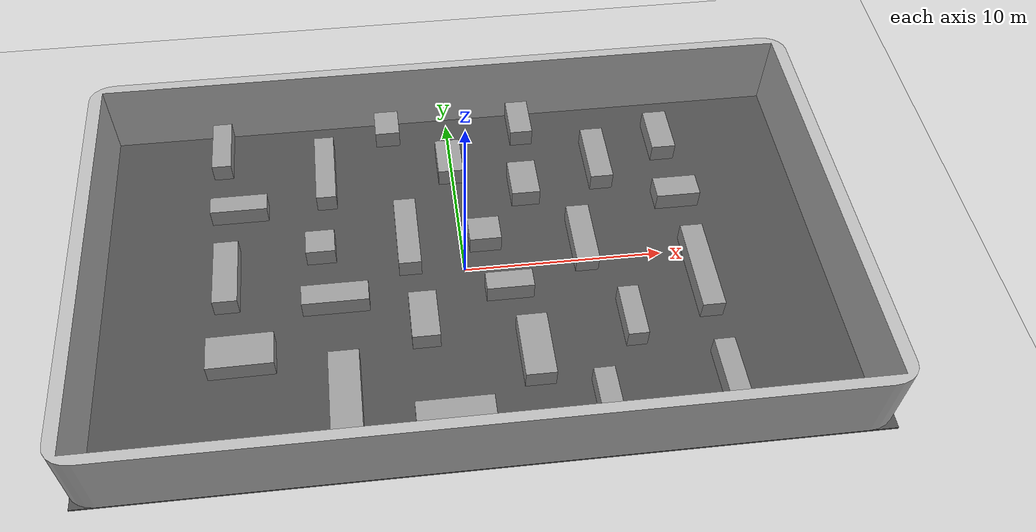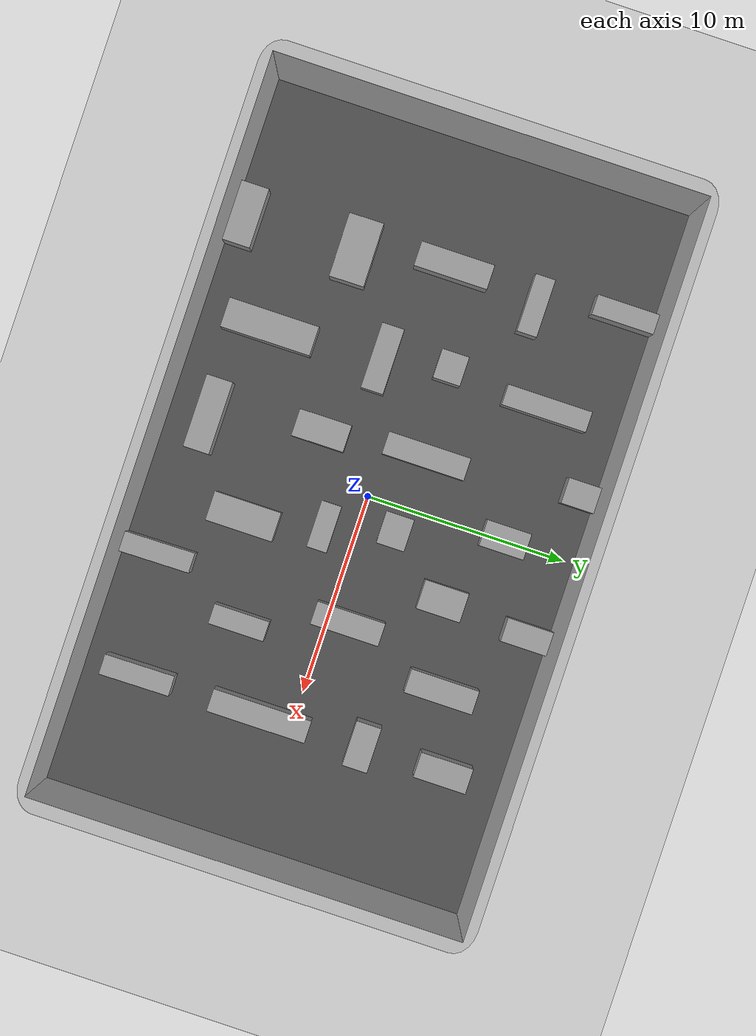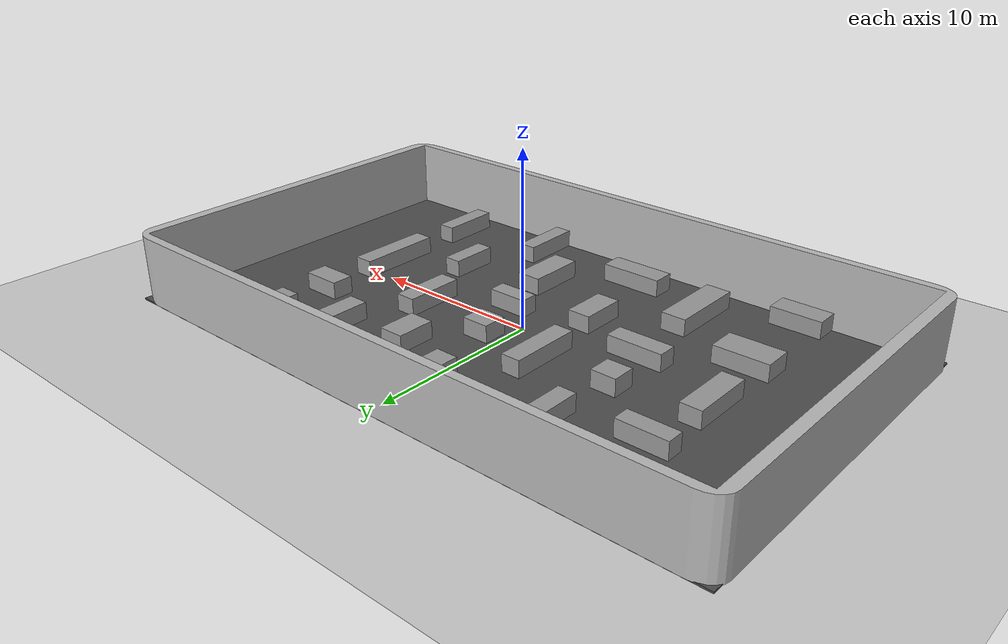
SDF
<sdf version="1.6">
 <world name="default">
  <light name="sun" type="directional">
   <cast_shadows>0</cast_shadows>
   <pose>0 0 100 0 -0 0</pose>
   <diffuse>0.8 0.8 0.8 1</diffuse>
   <specular>0.1 0.1 0.1 1</specular>
   <attenuation>
    <range>1000</range>
    <constant>0.9</constant>
    <linear>0.01</linear>
    <quadratic>0.001</quadratic>
   </attenuation>
   <direction>0 0 -1</direction>
  </light>
  <model name="ground_plane">
   <static>1</static>
   <link name="link">
    <collision name="collision">
     <geometry><plane><normal>0 0 1</normal><size>100 100</size></plane></geometry>
     <surface><friction><ode><mu>100</mu><mu2>50</mu2></ode></friction></surface>
    </collision>
    <visual name="visual">
     <cast_shadows>0</cast_shadows>
     <geometry><plane><normal>0 0 1</normal><size>100 100</size></plane></geometry>
     <material>
      <script><uri>file://media/materials/scripts/gazebo.material</uri><name>Gazebo/Grey</name></script>
     </material>
    </visual>
   </link>
  </model>
  <gravity>0 0 -9.8</gravity>
  <magnetic_field>6e-06 2.3e-05 -4.2e-05</magnetic_field>
  <atmosphere type="adiabatic"/>
  <physics name="default_physics" default="0" type="ode">
   <max_step_size>0.001</max_step_size>
   <real_time_factor>1</real_time_factor>
   <real_time_update_rate>1000</real_time_update_rate>
  </physics>
  <scene><ambient>0.4 0.4 0.4 1</ambient><background>0.7 0.7 0.7 1</background><shadows>1</shadows></scene>
  <spherical_coordinates>
   <surface_model>EARTH_WGS84</surface_model>
   <latitude_deg>0</latitude_deg>
   <longitude_deg>0</longitude_deg>
   <elevation>0</elevation>
   <heading_deg>0</heading_deg>
  </spherical_coordinates>
  <model name="asphalt_plane">
   <static>1</static>
   <link name="link">
    <collision name="collision"><geometry><box><size>37 22 0.1</size></box></geometry></collision>
    <visual name="visual">
     <cast_shadows>0</cast_shadows>
     <geometry><box><size>37 22 0.1</size></box></geometry>
     <material>
      <script>
       <uri>model://asphalt_plane/materials/scripts</uri>
       <uri>model://asphalt_plane/materials/textures</uri>
       <name>vrc/asphalt</name>
      </script>
     </material>
    </visual>
   </link>
   <pose>0.074349 -0.018898 0 0 -0 0</pose>
  </model>
  <model name="yard_square">
   <pose>0 0 0 1.5708 -0 1.5708</pose>
   <static>1</static>
   <link name="body">
    <collision name="collision">
     <geometry><mesh><uri>model://yard_square/yard_square.stl</uri><scale>0.1 0.1 0.13</scale></mesh></geometry>
    </collision>
    <visual name="visual">
     <geometry><mesh><uri>model://yard_square/yard_square.stl</uri><scale>0.1 0.1 0.13</scale></mesh></geometry>
    </visual>
   </link>
  </model>
  <audio><device>default</device></audio>
  <model name="unit_box_0">
   <pose>-2.73107 2.0511 0.550002 -8e-06 -0 4.5e-05</pose>
   <static>1</static>
   <link name="link">
    <inertial>
     <mass>1</mass>
     <inertia>
      <ixx>0.166667</ixx>
      <ixy>0</ixy>
      <ixz>0</ixz>
      <iyy>0.166667</iyy>
      <iyz>0</iyz>
      <izz>0.166667</izz>
     </inertia>
    </inertial>
    <collision name="collision"><geometry><box><size>1.12328 4.13675 1</size></box></geometry></collision>
    <visual name="visual">
     <geometry><box><size>1.12328 4.13675 1</size></box></geometry>
     <material>
      <script><name>Gazebo/Grey</name><uri>file://media/materials/scripts/gazebo.material</uri></script>
     </material>
    </visual>
   </link>
  </model>
  <model name="unit_box_2">
   <pose>3.61921 4.98138 0.549996 -7e-06 -0 0.001667</pose>
   <static>1</static>
   <link name="link">
    <inertial>
     <mass>1</mass>
     <inertia>
      <ixx>0.166667</ixx>
      <ixy>0</ixy>
      <ixz>0</ixz>
      <iyy>0.166667</iyy>
      <iyz>0</iyz>
      <izz>0.166667</izz>
     </inertia>
    </inertial>
    <collision name="collision"><geometry><box><size>1.4552 2.19896 1</size></box></geometry></collision>
    <visual name="visual">
     <geometry><box><size>1.4552 2.19896 1</size></box></geometry>
     <material>
      <script><name>Gazebo/Grey</name><uri>file://media/materials/scripts/gazebo.material</uri></script>
     </material>
    </visual>
   </link>
  </model>
  <model name="unit_box_3">
   <pose>3.96727 9.408 0.549227 0 0.000383 -0.000473</pose>
   <static>1</static>
   <link name="link">
    <inertial>
     <mass>1</mass>
     <inertia>
      <ixx>0.166667</ixx>
      <ixy>0</ixy>
      <ixz>0</ixz>
      <iyy>0.166667</iyy>
      <iyz>0</iyz>
      <izz>0.166667</izz>
     </inertia>
    </inertial>
    <collision name="collision"><geometry><box><size>1.18061 2.38675 1</size></box></geometry></collision>
    <visual name="visual">
     <geometry><box><size>1.18061 2.38675 1</size></box></geometry>
     <material>
      <script><name>Gazebo/Grey</name><uri>file://media/materials/scripts/gazebo.material</uri></script>
     </material>
    </visual>
   </link>
  </model>
  <model name="unit_box_4">
   <pose>-11.0452 -4.24703 0.544487 0 -0 0.009696</pose>
   <static>1</static>
   <link name="link">
    <inertial>
     <mass>1</mass>
     <inertia>
      <ixx>0.166667</ixx>
      <ixy>0</ixy>
      <ixz>0</ixz>
      <iyy>0.166667</iyy>
      <iyz>0</iyz>
      <izz>0.166667</izz>
     </inertia>
    </inertial>
    <collision name="collision"><geometry><box><size>3.1937 1.73528 1</size></box></geometry></collision>
    <visual name="visual">
     <geometry><box><size>3.1937 1.73528 1</size></box></geometry>
     <material>
      <script><name>Gazebo/Grey</name><uri>file://media/materials/scripts/gazebo.material</uri></script>
     </material>
    </visual>
   </link>
  </model>
  <model name="unit_box_5">
   <pose>-1.3217 -8.51916 0.549982 0 1.7e-05 -1.57091</pose>
   <static>1</static>
   <link name="link">
    <inertial>
     <mass>1</mass>
     <inertia>
      <ixx>0.166667</ixx>
      <ixy>0</ixy>
      <ixz>0</ixz>
      <iyy>0.166667</iyy>
      <iyz>0</iyz>
      <izz>0.166667</izz>
     </inertia>
    </inertial>
    <collision name="collision"><geometry><box><size>1.31392 3.64155 1</size></box></geometry></collision>
    <visual name="visual">
     <geometry><box><size>1.31392 3.64155 1</size></box></geometry>
     <material>
      <script><name>Gazebo/Grey</name><uri>file://media/materials/scripts/gazebo.material</uri></script>
     </material>
    </visual>
   </link>
  </model>
  <model name="unit_box_10">
   <pose>-6.50105 -1.41651 0.547399 -0.000838 0 0</pose>
   <static>1</static>
   <link name="link">
    <inertial>
     <mass>1</mass>
     <inertia>
      <ixx>0.166667</ixx>
      <ixy>0</ixy>
      <ixz>0</ixz>
      <iyy>0.166667</iyy>
      <iyz>0</iyz>
      <izz>0.166667</izz>
     </inertia>
    </inertial>
    <collision name="collision"><geometry><box><size>3.27683 1.11673 1</size></box></geometry></collision>
    <visual name="visual">
     <geometry><box><size>3.27683 1.11673 1</size></box></geometry>
     <material>
      <script><name>Gazebo/Grey</name><uri>file://media/materials/scripts/gazebo.material</uri></script>
     </material>
    </visual>
   </link>
  </model>
  <model name="unit_box_1">
   <pose>11.617 -1.6301 0.550023 6e-06 -0 0.000254</pose>
   <static>1</static>
   <link name="link">
    <inertial>
     <mass>1</mass>
     <inertia>
      <ixx>0.166667</ixx>
      <ixy>0</ixy>
      <ixz>0</ixz>
      <iyy>0.166667</iyy>
      <iyz>0</iyz>
      <izz>0.166667</izz>
     </inertia>
    </inertial>
    <collision name="collision"><geometry><box><size>1.12056 4.92766 1</size></box></geometry></collision>
    <visual name="visual">
     <geometry><box><size>1.12056 4.92766 1</size></box></geometry>
     <material>
      <script><name>Gazebo/Grey</name><uri>file://media/materials/scripts/gazebo.material</uri></script>
     </material>
    </visual>
   </link>
  </model>
  <model name="unit_box_6">
   <pose>-6.72428 6.80685 0.549214 -0.00038 0 7.5e-05</pose>
   <static>1</static>
   <link name="link">
    <inertial>
     <mass>1</mass>
     <inertia>
      <ixx>0.166667</ixx>
      <ixy>0</ixy>
      <ixz>0</ixz>
      <iyy>0.166667</iyy>
      <iyz>0</iyz>
      <izz>0.166667</izz>
     </inertia>
    </inertial>
    <collision name="collision"><geometry><box><size>1.02781 4.24453 1</size></box></geometry></collision>
    <visual name="visual">
     <geometry><box><size>1.02781 4.24453 1</size></box></geometry>
     <material>
      <script><name>Gazebo/Grey</name><uri>file://media/materials/scripts/gazebo.material</uri></script>
     </material>
    </visual>
   </link>
  </model>
  <model name="unit_box_8">
   <pose>-6.23783 -7.03641 0.549084 0.00039 -0 0</pose>
   <static>1</static>
   <link name="link">
    <inertial>
     <mass>1</mass>
     <inertia>
      <ixx>0.166667</ixx>
      <ixy>0</ixy>
      <ixz>0</ixz>
      <iyy>0.166667</iyy>
      <iyz>0</iyz>
      <izz>0.166667</izz>
     </inertia>
    </inertial>
    <collision name="collision"><geometry><box><size>1.46752 4.51085 1</size></box></geometry></collision>
    <visual name="visual">
     <geometry><box><size>1.46752 4.51085 1</size></box></geometry>
     <material>
      <script><name>Gazebo/Grey</name><uri>file://media/materials/scripts/gazebo.material</uri></script>
     </material>
    </visual>
   </link>
  </model>
  <model name="unit_box_11">
   <pose>7.75128 6.30775 0.55279 0.00034 -0 0</pose>
   <static>1</static>
   <link name="link">
    <inertial>
     <mass>1</mass>
     <inertia>
      <ixx>0.166667</ixx>
      <ixy>0</ixy>
      <ixz>0</ixz>
      <iyy>0.166667</iyy>
      <iyz>0</iyz>
      <izz>0.166667</izz>
     </inertia>
    </inertial>
    <collision name="collision"><geometry><box><size>1.17874 3.42934 1</size></box></geometry></collision>
    <visual name="visual">
     <geometry><box><size>1.17874 3.42934 1</size></box></geometry>
     <material>
      <script><name>Gazebo/Grey</name><uri>file://media/materials/scripts/gazebo.material</uri></script>
     </material>
    </visual>
   </link>
  </model>
  <model name="unit_box_12">
   <pose>11.4234 7.61252 0.547927 -0.000766 0 0</pose>
   <static>1</static>
   <link name="link">
    <inertial>
     <mass>1</mass>
     <inertia>
      <ixx>0.166667</ixx>
      <ixy>0</ixy>
      <ixz>0</ixz>
      <iyy>0.166667</iyy>
      <iyz>0</iyz>
      <izz>0.166667</izz>
     </inertia>
    </inertial>
    <collision name="collision"><geometry><box><size>1.25351 2.6176 1</size></box></geometry></collision>
    <visual name="visual">
     <geometry><box><size>1.25351 2.6176 1</size></box></geometry>
     <material>
      <script><name>Gazebo/Grey</name><uri>file://media/materials/scripts/gazebo.material</uri></script>
     </material>
    </visual>
   </link>
  </model>
  <model name="unit_box_2_clone">
   <pose>-7.12788 1.83175 0.549998 -7e-06 -0 0.001667</pose>
   <static>1</static>
   <link name="link">
    <inertial>
     <mass>1</mass>
     <inertia>
      <ixx>0.166667</ixx>
      <ixy>0</ixy>
      <ixz>0</ixz>
      <iyy>0.166667</iyy>
      <iyz>0</iyz>
      <izz>0.166667</izz>
     </inertia>
    </inertial>
    <collision name="collision"><geometry><box><size>1.46531 1.36719 1</size></box></geometry></collision>
    <visual name="visual">
     <geometry><box><size>1.46531 1.36719 1</size></box></geometry>
     <material>
      <script><name>Gazebo/Grey</name><uri>file://media/materials/scripts/gazebo.material</uri></script>
     </material>
    </visual>
   </link>
  </model>
  <model name="unit_box_14">
   <pose>-11.8147 0.44022 0.55 0 -0 0</pose>
   <static>1</static>
   <link name="link">
    <inertial>
     <mass>1</mass>
     <inertia>
      <ixx>0.166667</ixx>
      <ixy>0</ixy>
      <ixz>0</ixz>
      <iyy>0.166667</iyy>
      <iyz>0</iyz>
      <izz>0.166667</izz>
     </inertia>
    </inertial>
    <collision name="collision"><geometry><box><size>1.22641 3.68175 1</size></box></geometry></collision>
    <visual name="visual">
     <geometry><box><size>1.22641 3.68175 1</size></box></geometry>
     <material>
      <script><name>Gazebo/Grey</name><uri>file://media/materials/scripts/gazebo.material</uri></script>
     </material>
    </visual>
   </link>
  </model>
  <model name="unit_box_16">
   <pose>-12.1721 8.97934 0.549961 3.4e-05 -0 0</pose>
   <static>1</static>
   <link name="link">
    <inertial>
     <mass>1</mass>
     <inertia>
      <ixx>0.166667</ixx>
      <ixy>0</ixy>
      <ixz>0</ixz>
      <iyy>0.166667</iyy>
      <iyz>0</iyz>
      <izz>0.166667</izz>
     </inertia>
    </inertial>
    <collision name="collision"><geometry><box><size>1 3.13508 1</size></box></geometry></collision>
    <visual name="visual">
     <geometry><box><size>1 3.13508 1</size></box></geometry>
     <material>
      <script><name>Gazebo/Grey</name><uri>file://media/materials/scripts/gazebo.material</uri></script>
     </material>
    </visual>
   </link>
  </model>
  <model name="unit_box_17">
   <pose>-10.9889 -9.8811 0.549948 4.3e-05 0 -1e-06</pose>
   <static>1</static>
   <link name="link">
    <inertial>
     <mass>1</mass>
     <inertia>
      <ixx>0.166667</ixx>
      <ixy>0</ixy>
      <ixz>0</ixz>
      <iyy>0.166667</iyy>
      <iyz>0</iyz>
      <izz>0.166667</izz>
     </inertia>
    </inertial>
    <collision name="collision"><geometry><box><size>2.98242 1.49188 1</size></box></geometry></collision>
    <visual name="visual">
     <geometry><box><size>2.98242 1.49188 1</size></box></geometry>
     <material>
      <script><name>Gazebo/Grey</name><uri>file://media/materials/scripts/gazebo.material</uri></script>
     </material>
    </visual>
   </link>
  </model>
  <model name="unit_box">
   <pose>1.16313 1.77285 0.549958 3.6e-05 -0 0</pose>
   <static>1</static>
   <link name="link">
    <inertial>
     <mass>1</mass>
     <inertia>
      <ixx>0.166667</ixx>
      <ixy>0</ixy>
      <ixz>0</ixz>
      <iyy>0.166667</iyy>
      <iyz>0</iyz>
      <izz>0.166667</izz>
     </inertia>
    </inertial>
    <collision name="collision"><geometry><box><size>1.6032 1.4008 1</size></box></geometry></collision>
    <visual name="visual">
     <geometry><box><size>1.6032 1.4008 1</size></box></geometry>
     <material>
      <script><name>Gazebo/Grey</name><uri>file://media/materials/scripts/gazebo.material</uri></script>
     </material>
    </visual>
   </link>
  </model>
  <model name="unit_box_7">
   <pose>-11.2256 4.76444 0.549996 -9e-06 -0 0.000673</pose>
   <static>1</static>
   <link name="link">
    <inertial>
     <mass>1</mass>
     <inertia>
      <ixx>0.166667</ixx>
      <ixy>0</ixy>
      <ixz>0</ixz>
      <iyy>0.166667</iyy>
      <iyz>0</iyz>
      <izz>0.166667</izz>
     </inertia>
    </inertial>
    <collision name="collision"><geometry><box><size>2.89155 1 1</size></box></geometry></collision>
    <visual name="visual">
     <geometry><box><size>2.89155 1 1</size></box></geometry>
     <material>
      <script><name>Gazebo/Grey</name><uri>file://media/materials/scripts/gazebo.material</uri></script>
     </material>
    </visual>
   </link>
  </model>
  <model name="unit_box_15">
   <pose>-3.26959 9.86497 0.549986 1.4e-05 -0 -3.1e-05</pose>
   <static>1</static>
   <link name="link">
    <inertial>
     <mass>1</mass>
     <inertia>
      <ixx>0.166667</ixx>
      <ixy>0</ixy>
      <ixz>0</ixz>
      <iyy>0.166667</iyy>
      <iyz>0</iyz>
      <izz>0.166667</izz>
     </inertia>
    </inertial>
    <collision name="collision"><geometry><box><size>1.28707 1.98363 1</size></box></geometry></collision>
    <visual name="visual">
     <geometry><box><size>1.28707 1.98363 1</size></box></geometry>
     <material>
      <script><name>Gazebo/Grey</name><uri>file://media/materials/scripts/gazebo.material</uri></script>
     </material>
    </visual>
   </link>
  </model>
  <model name="unit_box_21">
   <pose>11.4638 3.50846 0.549995 -8e-06 0 7.4e-05</pose>
   <static>1</static>
   <link name="link">
    <inertial>
     <mass>1</mass>
     <inertia>
      <ixx>0.166667</ixx>
      <ixy>0</ixy>
      <ixz>0</ixz>
      <iyy>0.166667</iyy>
      <iyz>0</iyz>
      <izz>0.166667</izz>
     </inertia>
    </inertial>
    <collision name="collision"><geometry><box><size>2.25359 1.25074 1</size></box></geometry></collision>
    <visual name="visual">
     <geometry><box><size>2.25359 1.25074 1</size></box></geometry>
     <material>
      <script><name>Gazebo/Grey</name><uri>file://media/materials/scripts/gazebo.material</uri></script>
     </material>
    </visual>
   </link>
  </model>
  <model name="unit_box_22">
   <pose>2.02997 -1.53509 0.549959 0 3.5e-05 -1.6e-05</pose>
   <static>1</static>
   <link name="link">
    <inertial>
     <mass>1</mass>
     <inertia>
      <ixx>0.166667</ixx>
      <ixy>0</ixy>
      <ixz>0</ixz>
      <iyy>0.166667</iyy>
      <iyz>0</iyz>
      <izz>0.166667</izz>
     </inertia>
    </inertial>
    <collision name="collision"><geometry><box><size>2.33197 1 1</size></box></geometry></collision>
    <visual name="visual">
     <geometry><box><size>2.33197 1 1</size></box></geometry>
     <material>
      <script><name>Gazebo/Grey</name><uri>file://media/materials/scripts/gazebo.material</uri></script>
     </material>
    </visual>
   </link>
  </model>
  <model name="unit_box_25">
   <pose>-0.115409 6.90879 0.549995 -9e-06 0 -0.000135</pose>
   <static>1</static>
   <link name="link">
    <inertial>
     <mass>1</mass>
     <inertia>
      <ixx>0.166667</ixx>
      <ixy>0</ixy>
      <ixz>0</ixz>
      <iyy>0.166667</iyy>
      <iyz>0</iyz>
      <izz>0.166667</izz>
     </inertia>
    </inertial>
    <collision name="collision"><geometry><box><size>1.3139 2.2313 1</size></box></geometry></collision>
    <visual name="visual">
     <geometry><box><size>1.3139 2.2313 1</size></box></geometry>
     <material>
      <script><name>Gazebo/Grey</name><uri>file://media/materials/scripts/gazebo.material</uri></script>
     </material>
    </visual>
   </link>
  </model>
  <model name="unit_box_26">
   <pose>-2.30328 -3.10755 0.55 0 -0 0.000713</pose>
   <static>1</static>
   <link name="link">
    <inertial>
     <mass>1</mass>
     <inertia>
      <ixx>0.166667</ixx>
      <ixy>0</ixy>
      <ixz>0</ixz>
      <iyy>0.166667</iyy>
      <iyz>0</iyz>
      <izz>0.166667</izz>
     </inertia>
    </inertial>
    <collision name="collision"><geometry><box><size>1.35161 2.61855 1</size></box></geometry></collision>
    <visual name="visual">
     <geometry><box><size>1.35161 2.61855 1</size></box></geometry>
     <material>
      <script><name>Gazebo/Grey</name><uri>file://media/materials/scripts/gazebo.material</uri></script>
     </material>
    </visual>
   </link>
  </model>
  <model name="unit_box_27">
   <pose>11.6055 -7.80788 0.549999 0 -2e-06 0.011011</pose>
   <static>1</static>
   <link name="link">
    <inertial>
     <mass>1</mass>
     <inertia>
      <ixx>0.166667</ixx>
      <ixy>0</ixy>
      <ixz>0</ixz>
      <iyy>0.166667</iyy>
      <iyz>0</iyz>
      <izz>0.166667</izz>
     </inertia>
    </inertial>
    <collision name="collision"><geometry><box><size>1 3.50494 1</size></box></geometry></collision>
    <visual name="visual">
     <geometry><box><size>1 3.50494 1</size></box></geometry>
     <material>
      <script><name>Gazebo/Grey</name><uri>file://media/materials/scripts/gazebo.material</uri></script>
     </material>
    </visual>
   </link>
  </model>
  <model name="unit_box_28">
   <pose>5.70918 -8.94694 0.55 0 -0 0.011497</pose>
   <static>1</static>
   <link name="link">
    <inertial>
     <mass>1</mass>
     <inertia>
      <ixx>0.166667</ixx>
      <ixy>0</ixy>
      <ixz>0</ixz>
      <iyy>0.166667</iyy>
      <iyz>0</iyz>
      <izz>0.166667</izz>
     </inertia>
    </inertial>
    <collision name="collision"><geometry><box><size>1 3.89988 1</size></box></geometry></collision>
    <visual name="visual">
     <geometry><box><size>1 3.89988 1</size></box></geometry>
     <material>
      <script><name>Gazebo/Grey</name><uri>file://media/materials/scripts/gazebo.material</uri></script>
     </material>
    </visual>
   </link>
  </model>
  <model name="unit_box_29">
   <pose>6.07779 1.01572 0.549404 -0.000312 0 0</pose>
   <static>1</static>
   <link name="link">
    <inertial>
     <mass>1</mass>
     <inertia>
      <ixx>0.166667</ixx>
      <ixy>0</ixy>
      <ixz>0</ixz>
      <iyy>0.166667</iyy>
      <iyz>0</iyz>
      <izz>0.166667</izz>
     </inertia>
    </inertial>
    <collision name="collision"><geometry><box><size>1.1507 3.43458 1</size></box></geometry></collision>
    <visual name="visual">
     <geometry><box><size>1.1507 3.43458 1</size></box></geometry>
     <material>
      <script><name>Gazebo/Grey</name><uri>file://media/materials/scripts/gazebo.material</uri></script>
     </material>
    </visual>
   </link>
  </model>
  <model name="unit_box_30">
   <pose>7.67359 -3.96274 0.549885 8.3e-05 -0 -2e-06</pose>
   <static>1</static>
   <link name="link">
    <inertial>
     <mass>1</mass>
     <inertia>
      <ixx>0.166667</ixx>
      <ixy>0</ixy>
      <ixz>0</ixz>
      <iyy>0.166667</iyy>
      <iyz>0</iyz>
      <izz>0.166667</izz>
     </inertia>
    </inertial>
    <collision name="collision"><geometry><box><size>1 2.77429 1</size></box></geometry></collision>
    <visual name="visual">
     <geometry><box><size>1 2.77429 1</size></box></geometry>
     <material>
      <script><name>Gazebo/Grey</name><uri>file://media/materials/scripts/gazebo.material</uri></script>
     </material>
    </visual>
   </link>
  </model>
  <model name="unit_box_31">
   <pose>2.78243 -5.36744 0.55 0 -0 9e-05</pose>
   <static>1</static>
   <link name="link">
    <inertial>
     <mass>1</mass>
     <inertia>
      <ixx>0.166667</ixx>
      <ixy>0</ixy>
      <ixz>0</ixz>
      <iyy>0.166667</iyy>
      <iyz>0</iyz>
      <izz>0.166667</izz>
     </inertia>
    </inertial>
    <collision name="collision"><geometry><box><size>1.46472 3.34285 1</size></box></geometry></collision>
    <visual name="visual">
     <geometry><box><size>1.46472 3.34285 1</size></box></geometry>
     <material>
      <script><name>Gazebo/Grey</name><uri>file://media/materials/scripts/gazebo.material</uri></script>
     </material>
    </visual>
   </link>
  </model>
 </world>
</sdf>
